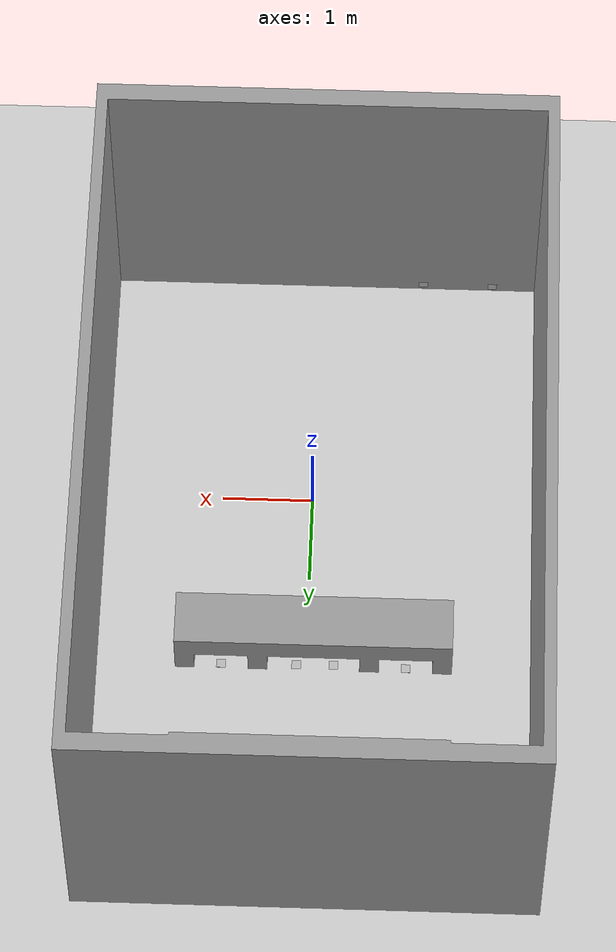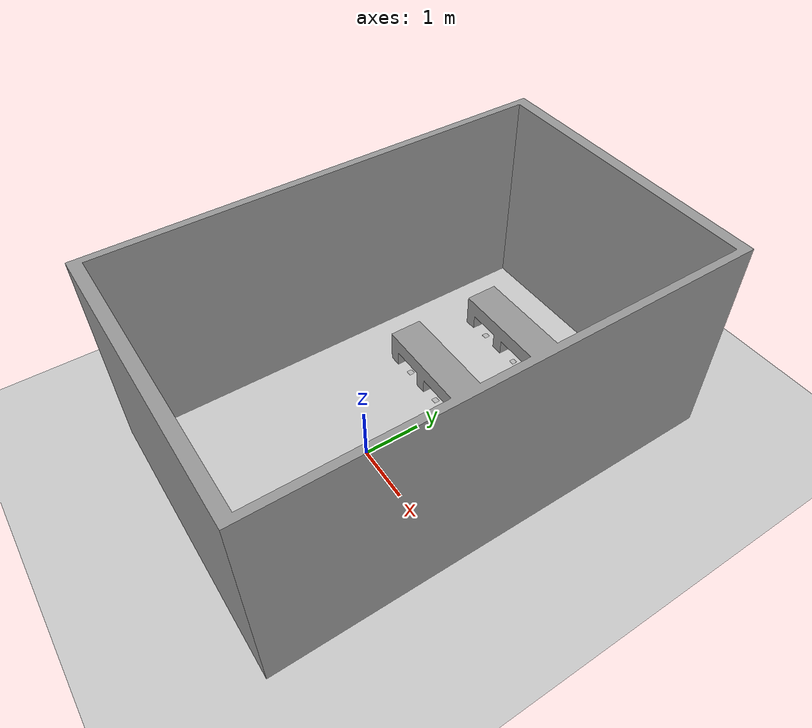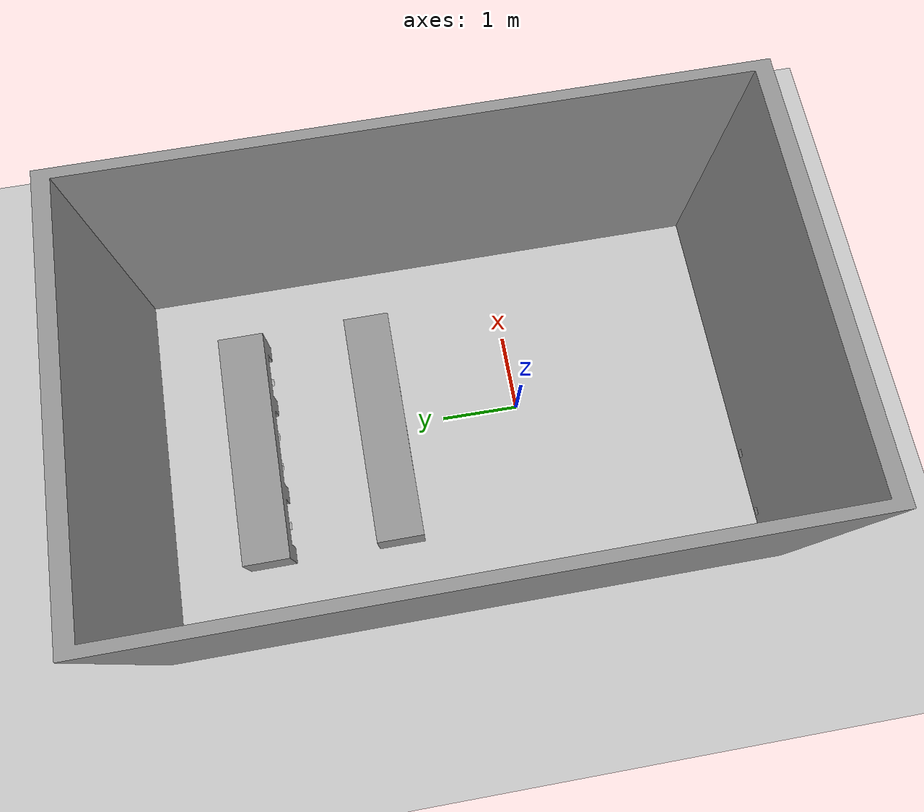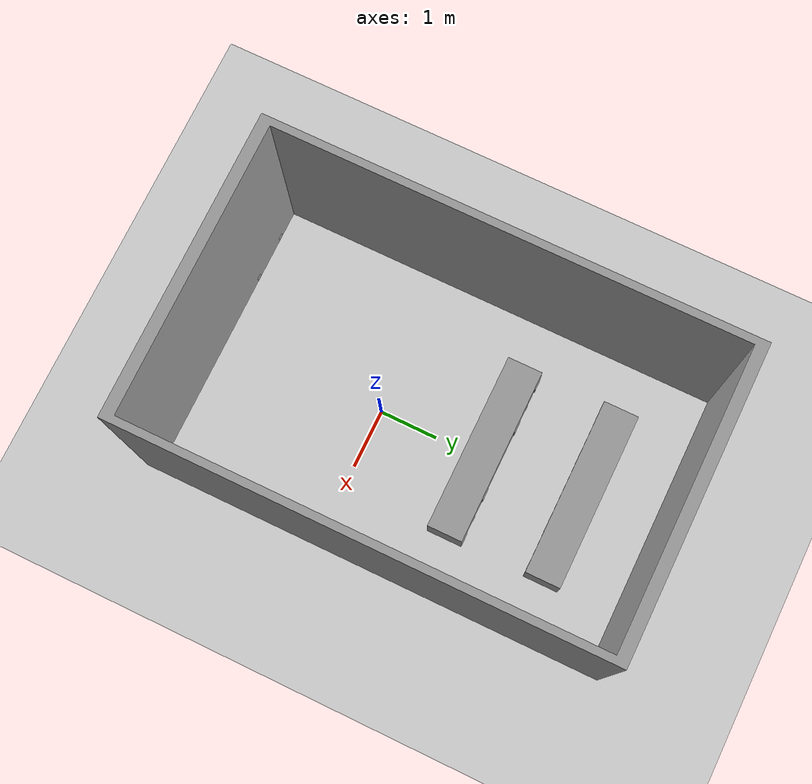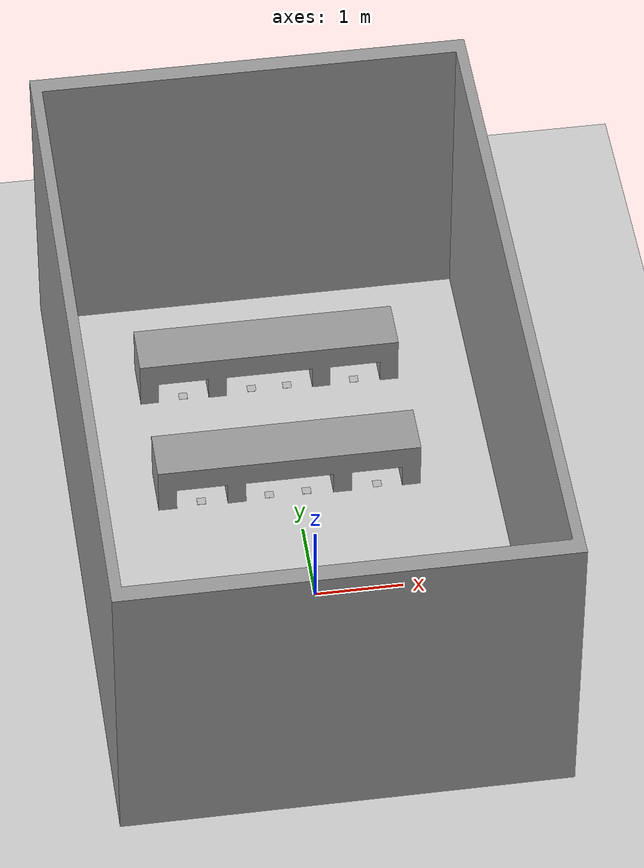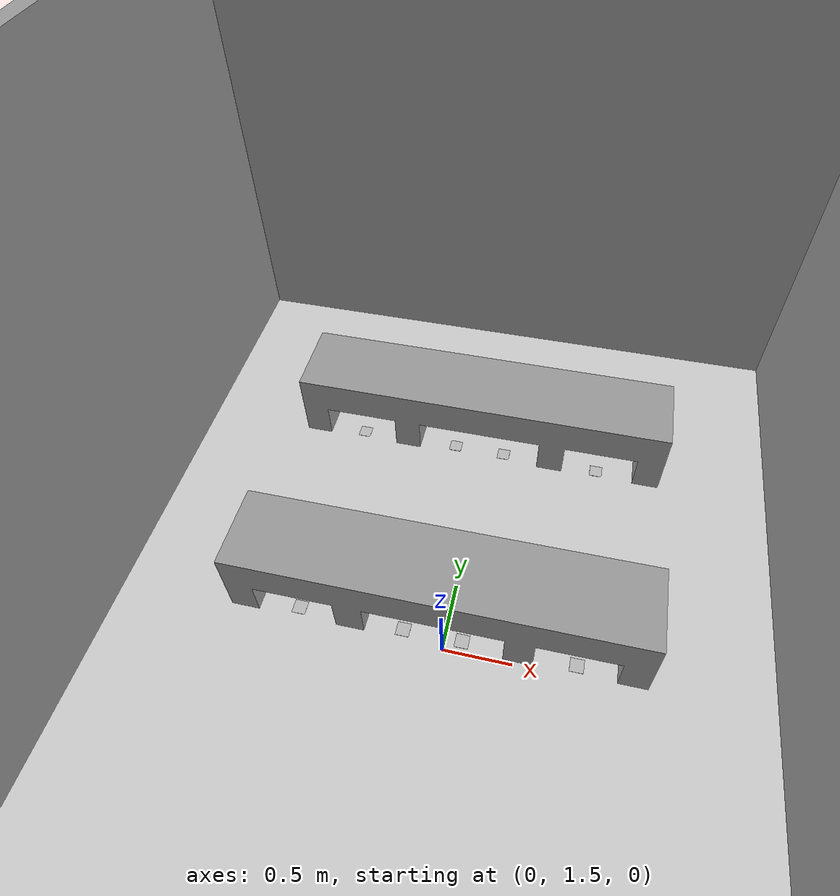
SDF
<sdf version="1.7">
 <world name="default">
  <light name="sun" type="directional">
   <pose>0 0 10 0 -0 0</pose>
   <diffuse>0.8 0.8 0.8 1</diffuse>
   <specular>0.2 0.2 0.2 1</specular>
   <attenuation>
    <range>1000</range>
    <constant>0.9</constant>
    <linear>0.01</linear>
    <quadratic>0.001</quadratic>
   </attenuation>
   <direction>-0.5 0.1 -0.9</direction>
   <spot><inner_angle>0</inner_angle><outer_angle>0</outer_angle><falloff>0</falloff></spot>
  </light>
  <model name="ground_plane">
   <static>1</static>
   <link name="link">
    <collision name="collision">
     <geometry><plane><normal>0 0 1</normal><size>100 100</size></plane></geometry>
     <surface>
      <contact><collide_bitmask>65535</collide_bitmask></contact>
      <friction><ode><mu>100</mu><mu2>50</mu2></ode></friction>
     </surface>
    </collision>
    <visual name="visual">
     <cast_shadows>0</cast_shadows>
     <geometry><plane><normal>0 0 1</normal><size>100 100</size></plane></geometry>
     <material>
      <script><uri>file://media/materials/scripts/gazebo.material</uri><name>Gazebo/Grey</name></script>
     </material>
    </visual>
   </link>
  </model>
  <gravity>0 0 -9.8</gravity>
  <magnetic_field>6e-06 2.3e-05 -4.2e-05</magnetic_field>
  <atmosphere type="adiabatic"/>
  <physics type="ode">
   <max_step_size>0.001</max_step_size>
   <real_time_factor>1</real_time_factor>
   <real_time_update_rate>1000</real_time_update_rate>
  </physics>
  <scene><ambient>0.4 0.4 0.4 1</ambient><background>0.7 0.7 0.7 1</background><shadows>1</shadows></scene>
  <audio><device>default</device></audio>
  <spherical_coordinates>
   <surface_model>EARTH_WGS84</surface_model>
   <latitude_deg>0</latitude_deg>
   <longitude_deg>0</longitude_deg>
   <elevation>0</elevation>
   <heading_deg>0</heading_deg>
  </spherical_coordinates>
  <model name="warehouse">
   <link name="link_0">
    <inertial>
     <mass>1</mass>
     <inertia>
      <ixx>0.166667</ixx>
      <ixy>0</ixy>
      <ixz>0</ixz>
      <iyy>0.166667</iyy>
      <iyz>0</iyz>
      <izz>0.166667</izz>
     </inertia>
    </inertial>
    <visual name="visual">
     <geometry><mesh><uri>./../models/warehouse/meshes/warehouse.stl</uri><scale>1 1 1</scale></mesh></geometry>
     <material>
      <lighting>1</lighting>
      <script><uri>file://media/materials/scripts/gazebo.material</uri><name>Gazebo/Grey</name></script>
      <shader type="pixel"/>
     </material>
    </visual>
    <collision name="collision">
     <geometry><mesh><uri>./../models/warehouse/meshes/warehouse.stl</uri><scale>1 1 1</scale></mesh></geometry>
     <surface>
      <friction>
       <ode><mu>1</mu><mu2>1</mu2><fdir1>0 0 0</fdir1><slip1>0</slip1><slip2>0</slip2></ode>
       <torsional>
        <coefficient>1</coefficient>
        <patch_radius>0</patch_radius>
        <surface_radius>0</surface_radius>
        <use_patch_radius>1</use_patch_radius>
        <ode><slip>0</slip></ode>
       </torsional>
      </friction>
      <bounce><restitution_coefficient>0</restitution_coefficient><threshold>1e+06</threshold></bounce>
      <contact>
       <collide_without_contact>0</collide_without_contact>
       <collide_without_contact_bitmask>1</collide_without_contact_bitmask>
       <collide_bitmask>1</collide_bitmask>
       <ode>
        <soft_cfm>0</soft_cfm>
        <soft_erp>0.2</soft_erp>
        <kp>1e+13</kp>
        <kd>1</kd>
        <max_vel>0.01</max_vel>
        <min_depth>0</min_depth>
       </ode>
       <bullet>
        <split_impulse>1</split_impulse>
        <split_impulse_penetration_threshold>-0.01</split_impulse_penetration_threshold>
        <soft_cfm>0</soft_cfm>
        <soft_erp>0.2</soft_erp>
        <kp>1e+13</kp>
        <kd>1</kd>
       </bullet>
      </contact>
     </surface>
    </collision>
   </link>
   <static>0</static>
   <pose>-0.076096 0.961238 -1.3e-05 3e-06 -0 0</pose>
  </model>
  <model name="marker1">
   <static>1</static>
   <link name="link">
    <visual name="visual">
     <geometry><mesh><uri>model://marker1/meshes/marker1.dae</uri><scale>0.2 0.2 0.2</scale></mesh></geometry>
    </visual>
   </link>
   <pose>-1.09005 1.55008 0 1.57079 -1.57079 3.14159</pose>
  </model>
  <model name="marker2">
   <static>1</static>
   <link name="link">
    <visual name="visual">
     <geometry><mesh><uri>model://marker2/meshes/marker2.dae</uri><scale>0.2 0.2 0.2</scale></mesh></geometry>
    </visual>
   </link>
   <pose>-0.305963 1.54282 0 1.57079 -1.57079 3.14159</pose>
  </model>
  <model name="marker3">
   <static>1</static>
   <link name="link">
    <visual name="visual">
     <geometry><mesh><uri>model://marker3/meshes/marker3.dae</uri><scale>0.2 0.2 0.2</scale></mesh></geometry>
    </visual>
   </link>
   <pose>0.125891 1.54413 0 1.57079 -1.57079 3.14159</pose>
  </model>
  <model name="marker4">
   <static>1</static>
   <link name="link">
    <visual name="visual">
     <geometry><mesh><uri>model://marker4/meshes/marker4.dae</uri><scale>0.2 0.2 0.2</scale></mesh></geometry>
    </visual>
   </link>
   <pose>0.943859 1.54115 0 1.57079 -1.57079 3.14159</pose>
  </model>
  <model name="marker5">
   <static>1</static>
   <link name="link">
    <visual name="visual">
     <geometry><mesh><uri>model://marker5/meshes/marker5.dae</uri><scale>0.2 0.2 0.2</scale></mesh></geometry>
    </visual>
   </link>
   <pose>-1.08723 2.12208 0 -1.57079 -1.57079 3.14159</pose>
  </model>
  <model name="marker6">
   <static>1</static>
   <link name="link">
    <visual name="visual">
     <geometry><mesh><uri>model://marker6/meshes/marker6.dae</uri><scale>0.2 0.2 0.2</scale></mesh></geometry>
    </visual>
   </link>
   <pose>-0.295376 2.00649 0 1.57079 1.57079 3.14159</pose>
  </model>
  <model name="marker7">
   <static>1</static>
   <link name="link">
    <visual name="visual">
     <geometry><mesh><uri>model://marker7/meshes/marker7.dae</uri><scale>0.2 0.2 0.2</scale></mesh></geometry>
    </visual>
   </link>
   <pose>0.11212 2.11048 0 -1.57079 -1.57079 3.14159</pose>
  </model>
  <model name="marker8">
   <static>1</static>
   <link name="link">
    <visual name="visual">
     <geometry><mesh><uri>model://marker8/meshes/marker8.dae</uri><scale>0.2 0.2 0.2</scale></mesh></geometry>
    </visual>
   </link>
   <pose>0.936119 2.11952 0 -1.57079 -1.57079 3.14159</pose>
  </model>
  <model name="marker9">
   <static>1</static>
   <link name="link">
    <visual name="visual">
     <geometry><mesh><uri>model://marker9/meshes/marker9.dae</uri><scale>0.2 0.2 0.2</scale></mesh></geometry>
    </visual>
   </link>
   <pose>0.924421 3.22943 0 1.57079 -1.57079 3.14159</pose>
  </model>
  <model name="marker10">
   <static>1</static>
   <link name="link">
    <visual name="visual">
     <geometry><mesh><uri>model://marker10/meshes/marker10.dae</uri><scale>0.2 0.2 0.2</scale></mesh></geometry>
    </visual>
   </link>
   <pose>0.136747 3.24312 0 1.57079 -1.57079 3.14159</pose>
  </model>
  <model name="marker11">
   <static>1</static>
   <link name="link">
    <visual name="visual">
     <geometry><mesh><uri>model://marker11/meshes/marker11.dae</uri><scale>0.2 0.2 0.2</scale></mesh></geometry>
    </visual>
   </link>
   <pose>-0.280415 3.24594 0 1.57079 -1.57079 3.14159</pose>
  </model>
  <model name="marker12">
   <static>1</static>
   <link name="link">
    <visual name="visual">
     <geometry><mesh><uri>model://marker12/meshes/marker12.dae</uri><scale>0.2 0.2 0.2</scale></mesh></geometry>
    </visual>
   </link>
   <pose>-1.08736 3.23582 0 1.57079 -1.57079 3.14159</pose>
  </model>
  <model name="marker13">
   <static>1</static>
   <link name="link">
    <visual name="visual">
     <geometry><mesh><uri>model://marker13/meshes/marker13.dae</uri><scale>0.2 0.2 0.2</scale></mesh></geometry>
    </visual>
   </link>
   <pose>-1.0892 3.81515 -0 -1.57079 -1.57079 3.14159</pose>
  </model>
  <model name="marker14">
   <static>1</static>
   <link name="link">
    <visual name="visual">
     <geometry><mesh><uri>model://marker14/meshes/marker14.dae</uri><scale>0.2 0.2 0.2</scale></mesh></geometry>
    </visual>
   </link>
   <pose>-0.294034 3.81227 0 -1.57079 -1.57079 3.14159</pose>
  </model>
  <model name="marker15">
   <static>1</static>
   <link name="link">
    <visual name="visual">
     <geometry><mesh><uri>model://marker15/meshes/marker15.dae</uri><scale>0.2 0.2 0.2</scale></mesh></geometry>
    </visual>
   </link>
   <pose>0.141132 3.8144 0 -1.57079 -1.57079 3.14159</pose>
  </model>
  <model name="marker16">
   <static>1</static>
   <link name="link">
    <visual name="visual">
     <geometry><mesh><uri>model://marker16/meshes/marker16.dae</uri><scale>0.2 0.2 0.2</scale></mesh></geometry>
    </visual>
   </link>
   <pose>0.933461 3.81584 0 -1.57079 -1.57079 3.14159</pose>
  </model>
  <model name="marker20">
   <static>1</static>
   <link name="link">
    <visual name="visual">
     <geometry><mesh><uri>model://marker20/meshes/marker20.dae</uri><scale>0.2 0.2 0.2</scale></mesh></geometry>
    </visual>
   </link>
   <pose>-1.18121 -2.83783 0.037682 0 -0 1.5708</pose>
  </model>
  <model name="marker19">
   <static>1</static>
   <link name="link">
    <visual name="visual">
     <geometry><mesh><uri>model://marker19/meshes/marker19.dae</uri><scale>0.2 0.2 0.2</scale></mesh></geometry>
    </visual>
   </link>
   <pose>-1.96917 -2.83849 0.030035 0 -0 1.5708</pose>
  </model>
 </world>
</sdf>
